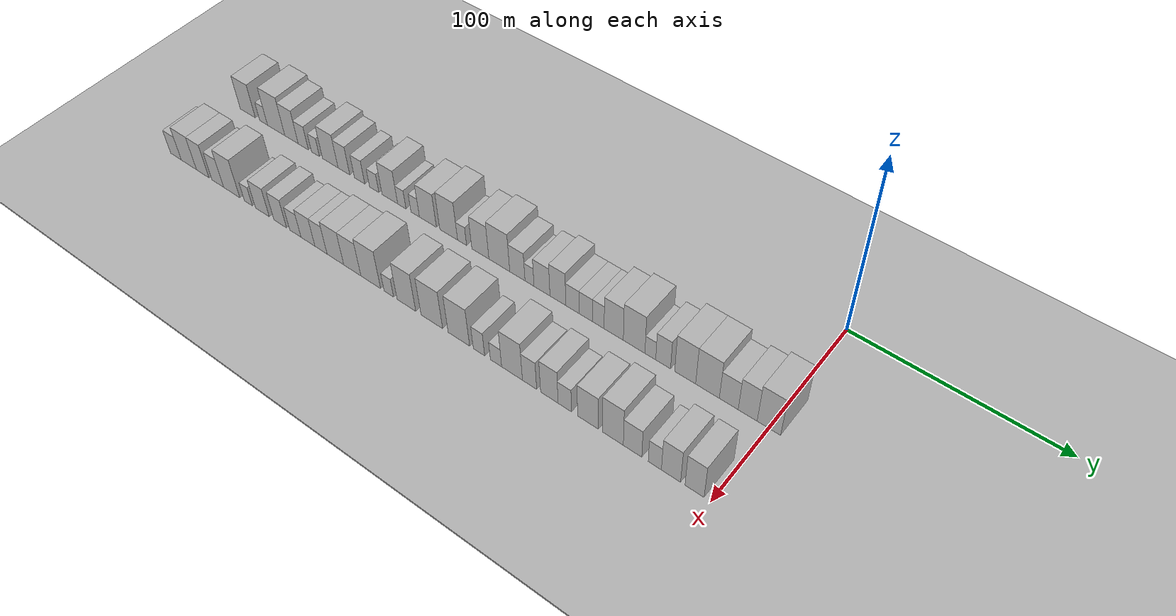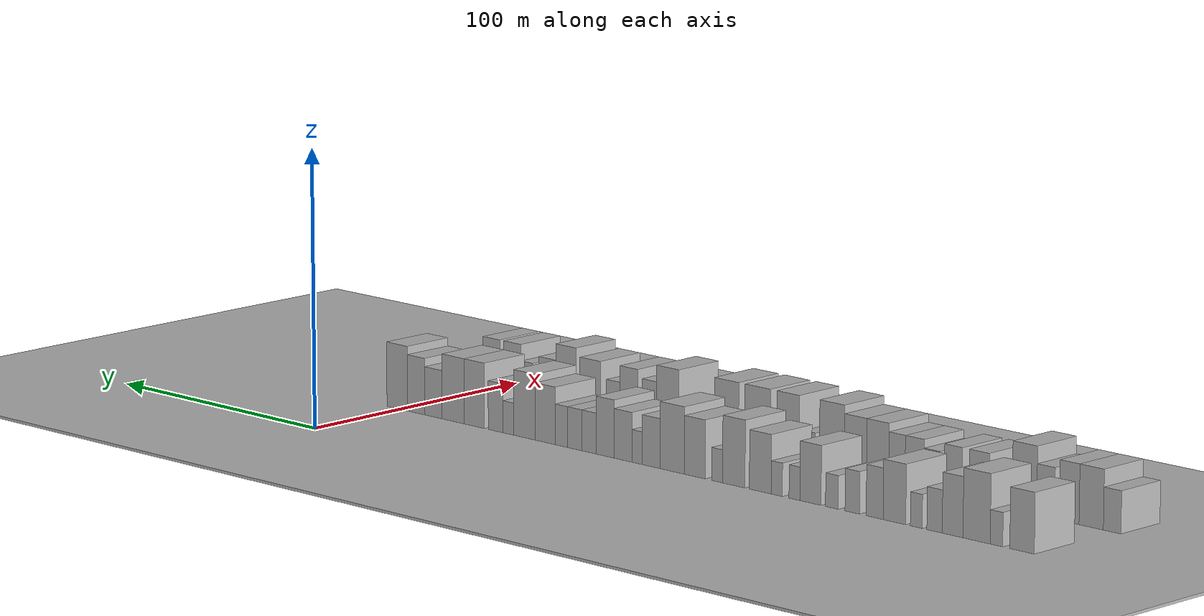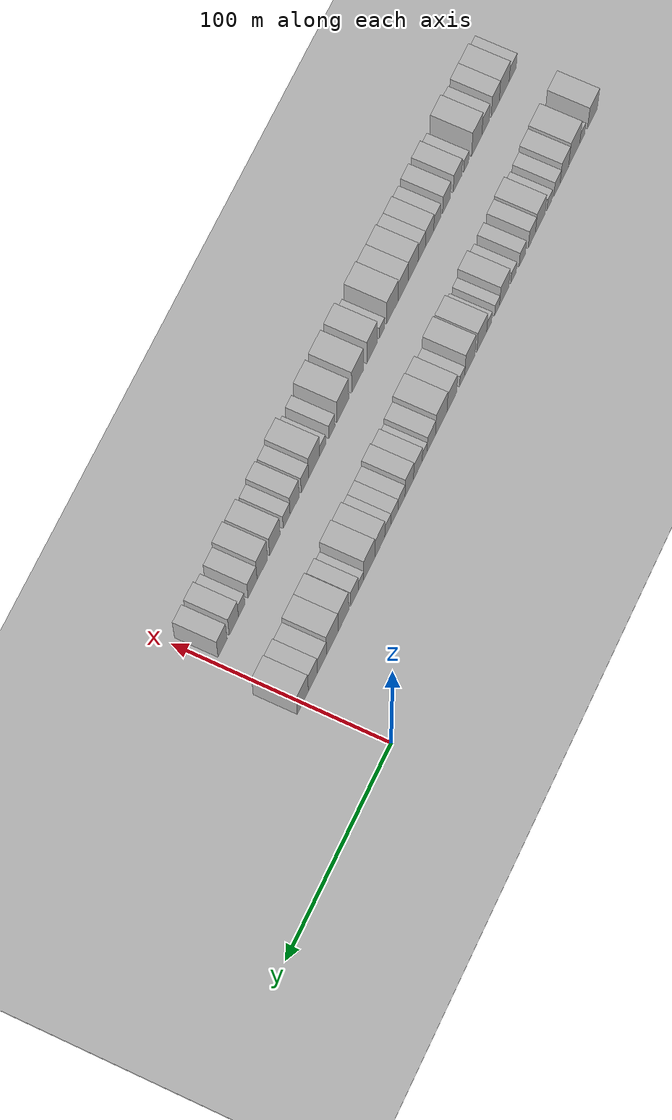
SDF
<sdf version="1.6">
 <world name="default">
  <include><name>ground_plane_1</name><uri>model://HANNAS_ground_plane</uri></include>
  <include>
   <name>ground_plane_2</name>
   <uri>model://HANNAS_ground_plane</uri>
   <pose>100 0 0  0 0 0</pose>
  </include>
  <model name="building_1">
   <static>1</static>
   <pose>50.0000 -291.7984 0 0.000000 0.000000 0.000000</pose>
   <link name="link">
    <pose>0 0 10.50 0 0 0</pose>
    <collision name="collision"><geometry><box><size>20.0000 10.4033 21.0000</size></box></geometry></collision>
    <visual name="visual">
     <cast_shadows>0</cast_shadows>
     <geometry><box><size>20.0000 10.4033 21.0000</size></box></geometry>
     <material>
      <script>
       <uri>model://HANNAS_wall/materials/scripts</uri>
       <uri>model://HANNAS_wall/materials/textures</uri>
       <name>vrc/HANNAS_wall</name>
      </script>
     </material>
    </visual>
   </link>
  </model>
  <model name="building_2">
   <static>1</static>
   <pose>50.0000 -280.9232 0 0.000000 0.000000 0.000000</pose>
   <link name="link">
    <pose>0 0 6.00 0 0 0</pose>
    <collision name="collision"><geometry><box><size>20.0000 5.3470 12.0000</size></box></geometry></collision>
    <visual name="visual">
     <cast_shadows>0</cast_shadows>
     <geometry><box><size>20.0000 5.3470 12.0000</size></box></geometry>
     <material>
      <script>
       <uri>model://HANNAS_wall/materials/scripts</uri>
       <uri>model://HANNAS_wall/materials/textures</uri>
       <name>vrc/HANNAS_wall</name>
      </script>
     </material>
    </visual>
   </link>
  </model>
  <model name="building_3">
   <static>1</static>
   <pose>50.0000 -272.3910 0 0.000000 0.000000 0.000000</pose>
   <link name="link">
    <pose>0 0 12.00 0 0 0</pose>
    <collision name="collision"><geometry><box><size>20.0000 11.7176 24.0000</size></box></geometry></collision>
    <visual name="visual">
     <cast_shadows>0</cast_shadows>
     <geometry><box><size>20.0000 11.7176 24.0000</size></box></geometry>
     <material>
      <script>
       <uri>model://HANNAS_wall/materials/scripts</uri>
       <uri>model://HANNAS_wall/materials/textures</uri>
       <name>vrc/HANNAS_wall</name>
      </script>
     </material>
    </visual>
   </link>
  </model>
  <model name="building_4">
   <static>1</static>
   <pose>50.0000 -262.0434 0 0.000000 0.000000 0.000000</pose>
   <link name="link">
    <pose>0 0 10.50 0 0 0</pose>
    <collision name="collision"><geometry><box><size>20.0000 8.9775 21.0000</size></box></geometry></collision>
    <visual name="visual">
     <cast_shadows>0</cast_shadows>
     <geometry><box><size>20.0000 8.9775 21.0000</size></box></geometry>
     <material>
      <script>
       <uri>model://HANNAS_wall/materials/scripts</uri>
       <uri>model://HANNAS_wall/materials/textures</uri>
       <name>vrc/HANNAS_wall</name>
      </script>
     </material>
    </visual>
   </link>
  </model>
  <model name="building_5">
   <static>1</static>
   <pose>50.0000 -254.2005 0 0.000000 0.000000 0.000000</pose>
   <link name="link">
    <pose>0 0 7.50 0 0 0</pose>
    <collision name="collision"><geometry><box><size>20.0000 6.7083 15.0000</size></box></geometry></collision>
    <visual name="visual">
     <cast_shadows>0</cast_shadows>
     <geometry><box><size>20.0000 6.7083 15.0000</size></box></geometry>
     <material>
      <script>
       <uri>model://HANNAS_wall/materials/scripts</uri>
       <uri>model://HANNAS_wall/materials/textures</uri>
       <name>vrc/HANNAS_wall</name>
      </script>
     </material>
    </visual>
   </link>
  </model>
  <model name="building_6">
   <static>1</static>
   <pose>50.0000 -246.2385 0 0.000000 0.000000 0.000000</pose>
   <link name="link">
    <pose>0 0 6.00 0 0 0</pose>
    <collision name="collision"><geometry><box><size>20.0000 5.2157 12.0000</size></box></geometry></collision>
    <visual name="visual">
     <cast_shadows>0</cast_shadows>
     <geometry><box><size>20.0000 5.2157 12.0000</size></box></geometry>
     <material>
      <script>
       <uri>model://HANNAS_wall/materials/scripts</uri>
       <uri>model://HANNAS_wall/materials/textures</uri>
       <name>vrc/HANNAS_wall</name>
      </script>
     </material>
    </visual>
   </link>
  </model>
  <model name="building_7">
   <static>1</static>
   <pose>50.0000 -236.6326 0 0.000000 0.000000 0.000000</pose>
   <link name="link">
    <pose>0 0 10.50 0 0 0</pose>
    <collision name="collision"><geometry><box><size>20.0000 9.9960 21.0000</size></box></geometry></collision>
    <visual name="visual">
     <cast_shadows>0</cast_shadows>
     <geometry><box><size>20.0000 9.9960 21.0000</size></box></geometry>
     <material>
      <script>
       <uri>model://HANNAS_wall/materials/scripts</uri>
       <uri>model://HANNAS_wall/materials/textures</uri>
       <name>vrc/HANNAS_wall</name>
      </script>
     </material>
    </visual>
   </link>
  </model>
  <model name="building_8">
   <static>1</static>
   <pose>50.0000 -227.9022 0 0.000000 0.000000 0.000000</pose>
   <link name="link">
    <pose>0 0 9.00 0 0 0</pose>
    <collision name="collision"><geometry><box><size>20.0000 7.4647 18.0000</size></box></geometry></collision>
    <visual name="visual">
     <cast_shadows>0</cast_shadows>
     <geometry><box><size>20.0000 7.4647 18.0000</size></box></geometry>
     <material>
      <script>
       <uri>model://HANNAS_wall/materials/scripts</uri>
       <uri>model://HANNAS_wall/materials/textures</uri>
       <name>vrc/HANNAS_wall</name>
      </script>
     </material>
    </visual>
   </link>
  </model>
  <model name="building_9">
   <static>1</static>
   <pose>50.0000 -217.9358 0 0.000000 0.000000 0.000000</pose>
   <link name="link">
    <pose>0 0 7.50 0 0 0</pose>
    <collision name="collision"><geometry><box><size>20.0000 6.4683 15.0000</size></box></geometry></collision>
    <visual name="visual">
     <cast_shadows>0</cast_shadows>
     <geometry><box><size>20.0000 6.4683 15.0000</size></box></geometry>
     <material>
      <script>
       <uri>model://HANNAS_wall/materials/scripts</uri>
       <uri>model://HANNAS_wall/materials/textures</uri>
       <name>vrc/HANNAS_wall</name>
      </script>
     </material>
    </visual>
   </link>
  </model>
  <model name="building_10">
   <static>1</static>
   <pose>50.0000 -208.8359 0 0.000000 0.000000 0.000000</pose>
   <link name="link">
    <pose>0 0 6.00 0 0 0</pose>
    <collision name="collision"><geometry><box><size>20.0000 5.7314 12.0000</size></box></geometry></collision>
    <visual name="visual">
     <cast_shadows>0</cast_shadows>
     <geometry><box><size>20.0000 5.7314 12.0000</size></box></geometry>
     <material>
      <script>
       <uri>model://HANNAS_wall/materials/scripts</uri>
       <uri>model://HANNAS_wall/materials/textures</uri>
       <name>vrc/HANNAS_wall</name>
      </script>
     </material>
    </visual>
   </link>
  </model>
  <model name="building_11">
   <static>1</static>
   <pose>50.0000 -199.2077 0 0.000000 0.000000 0.000000</pose>
   <link name="link">
    <pose>0 0 10.50 0 0 0</pose>
    <collision name="collision"><geometry><box><size>20.0000 9.5249 21.0000</size></box></geometry></collision>
    <visual name="visual">
     <cast_shadows>0</cast_shadows>
     <geometry><box><size>20.0000 9.5249 21.0000</size></box></geometry>
     <material>
      <script>
       <uri>model://HANNAS_wall/materials/scripts</uri>
       <uri>model://HANNAS_wall/materials/textures</uri>
       <name>vrc/HANNAS_wall</name>
      </script>
     </material>
    </visual>
   </link>
  </model>
  <model name="building_12">
   <static>1</static>
   <pose>50.0000 -191.9415 0 0.000000 0.000000 0.000000</pose>
   <link name="link">
    <pose>0 0 6.00 0 0 0</pose>
    <collision name="collision"><geometry><box><size>20.0000 5.0075 12.0000</size></box></geometry></collision>
    <visual name="visual">
     <cast_shadows>0</cast_shadows>
     <geometry><box><size>20.0000 5.0075 12.0000</size></box></geometry>
     <material>
      <script>
       <uri>model://HANNAS_wall/materials/scripts</uri>
       <uri>model://HANNAS_wall/materials/textures</uri>
       <name>vrc/HANNAS_wall</name>
      </script>
     </material>
    </visual>
   </link>
  </model>
  <model name="building_13">
   <static>1</static>
   <pose>50.0000 -183.9053 0 0.000000 0.000000 0.000000</pose>
   <link name="link">
    <pose>0 0 6.00 0 0 0</pose>
    <collision name="collision"><geometry><box><size>20.0000 5.0648 12.0000</size></box></geometry></collision>
    <visual name="visual">
     <cast_shadows>0</cast_shadows>
     <geometry><box><size>20.0000 5.0648 12.0000</size></box></geometry>
     <material>
      <script>
       <uri>model://HANNAS_wall/materials/scripts</uri>
       <uri>model://HANNAS_wall/materials/textures</uri>
       <name>vrc/HANNAS_wall</name>
      </script>
     </material>
    </visual>
   </link>
  </model>
  <model name="building_14">
   <static>1</static>
   <pose>50.0000 -176.3470 0 0.000000 0.000000 0.000000</pose>
   <link name="link">
    <pose>0 0 10.50 0 0 0</pose>
    <collision name="collision"><geometry><box><size>20.0000 10.0518 21.0000</size></box></geometry></collision>
    <visual name="visual">
     <cast_shadows>0</cast_shadows>
     <geometry><box><size>20.0000 10.0518 21.0000</size></box></geometry>
     <material>
      <script>
       <uri>model://HANNAS_wall/materials/scripts</uri>
       <uri>model://HANNAS_wall/materials/textures</uri>
       <name>vrc/HANNAS_wall</name>
      </script>
     </material>
    </visual>
   </link>
  </model>
  <model name="building_15">
   <static>1</static>
   <pose>50.0000 -164.1499 0 0.000000 0.000000 0.000000</pose>
   <link name="link">
    <pose>0 0 12.00 0 0 0</pose>
    <collision name="collision"><geometry><box><size>20.0000 10.3426 24.0000</size></box></geometry></collision>
    <visual name="visual">
     <cast_shadows>0</cast_shadows>
     <geometry><box><size>20.0000 10.3426 24.0000</size></box></geometry>
     <material>
      <script>
       <uri>model://HANNAS_wall/materials/scripts</uri>
       <uri>model://HANNAS_wall/materials/textures</uri>
       <name>vrc/HANNAS_wall</name>
      </script>
     </material>
    </visual>
   </link>
  </model>
  <model name="building_16">
   <static>1</static>
   <pose>50.0000 -156.3811 0 0.000000 0.000000 0.000000</pose>
   <link name="link">
    <pose>0 0 6.00 0 0 0</pose>
    <collision name="collision"><geometry><box><size>20.0000 5.1948 12.0000</size></box></geometry></collision>
    <visual name="visual">
     <cast_shadows>0</cast_shadows>
     <geometry><box><size>20.0000 5.1948 12.0000</size></box></geometry>
     <material>
      <script>
       <uri>model://HANNAS_wall/materials/scripts</uri>
       <uri>model://HANNAS_wall/materials/textures</uri>
       <name>vrc/HANNAS_wall</name>
      </script>
     </material>
    </visual>
   </link>
  </model>
  <model name="building_17">
   <static>1</static>
   <pose>50.0000 -145.9532 0 0.000000 0.000000 0.000000</pose>
   <link name="link">
    <pose>0 0 10.50 0 0 0</pose>
    <collision name="collision"><geometry><box><size>20.0000 9.6611 21.0000</size></box></geometry></collision>
    <visual name="visual">
     <cast_shadows>0</cast_shadows>
     <geometry><box><size>20.0000 9.6611 21.0000</size></box></geometry>
     <material>
      <script>
       <uri>model://HANNAS_wall/materials/scripts</uri>
       <uri>model://HANNAS_wall/materials/textures</uri>
       <name>vrc/HANNAS_wall</name>
      </script>
     </material>
    </visual>
   </link>
  </model>
  <model name="building_18">
   <static>1</static>
   <pose>50.0000 -135.3062 0 0.000000 0.000000 0.000000</pose>
   <link name="link">
    <pose>0 0 12.00 0 0 0</pose>
    <collision name="collision"><geometry><box><size>20.0000 11.6329 24.0000</size></box></geometry></collision>
    <visual name="visual">
     <cast_shadows>0</cast_shadows>
     <geometry><box><size>20.0000 11.6329 24.0000</size></box></geometry>
     <material>
      <script>
       <uri>model://HANNAS_wall/materials/scripts</uri>
       <uri>model://HANNAS_wall/materials/textures</uri>
       <name>vrc/HANNAS_wall</name>
      </script>
     </material>
    </visual>
   </link>
  </model>
  <model name="building_19">
   <static>1</static>
   <pose>50.0000 -125.2963 0 0.000000 0.000000 0.000000</pose>
   <link name="link">
    <pose>0 0 9.00 0 0 0</pose>
    <collision name="collision"><geometry><box><size>20.0000 8.3871 18.0000</size></box></geometry></collision>
    <visual name="visual">
     <cast_shadows>0</cast_shadows>
     <geometry><box><size>20.0000 8.3871 18.0000</size></box></geometry>
     <material>
      <script>
       <uri>model://HANNAS_wall/materials/scripts</uri>
       <uri>model://HANNAS_wall/materials/textures</uri>
       <name>vrc/HANNAS_wall</name>
      </script>
     </material>
    </visual>
   </link>
  </model>
  <model name="building_20">
   <static>1</static>
   <pose>50.0000 -118.6462 0 0.000000 0.000000 0.000000</pose>
   <link name="link">
    <pose>0 0 6.00 0 0 0</pose>
    <collision name="collision"><geometry><box><size>20.0000 4.9131 12.0000</size></box></geometry></collision>
    <visual name="visual">
     <cast_shadows>0</cast_shadows>
     <geometry><box><size>20.0000 4.9131 12.0000</size></box></geometry>
     <material>
      <script>
       <uri>model://HANNAS_wall/materials/scripts</uri>
       <uri>model://HANNAS_wall/materials/textures</uri>
       <name>vrc/HANNAS_wall</name>
      </script>
     </material>
    </visual>
   </link>
  </model>
  <model name="building_21">
   <static>1</static>
   <pose>50.0000 -111.9000 0 0.000000 0.000000 0.000000</pose>
   <link name="link">
    <pose>0 0 9.00 0 0 0</pose>
    <collision name="collision"><geometry><box><size>20.0000 8.5792 18.0000</size></box></geometry></collision>
    <visual name="visual">
     <cast_shadows>0</cast_shadows>
     <geometry><box><size>20.0000 8.5792 18.0000</size></box></geometry>
     <material>
      <script>
       <uri>model://HANNAS_wall/materials/scripts</uri>
       <uri>model://HANNAS_wall/materials/textures</uri>
       <name>vrc/HANNAS_wall</name>
      </script>
     </material>
    </visual>
   </link>
  </model>
  <model name="building_22">
   <static>1</static>
   <pose>50.0000 -103.3777 0 0.000000 0.000000 0.000000</pose>
   <link name="link">
    <pose>0 0 10.50 0 0 0</pose>
    <collision name="collision"><geometry><box><size>20.0000 8.4652 21.0000</size></box></geometry></collision>
    <visual name="visual">
     <cast_shadows>0</cast_shadows>
     <geometry><box><size>20.0000 8.4652 21.0000</size></box></geometry>
     <material>
      <script>
       <uri>model://HANNAS_wall/materials/scripts</uri>
       <uri>model://HANNAS_wall/materials/textures</uri>
       <name>vrc/HANNAS_wall</name>
      </script>
     </material>
    </visual>
   </link>
  </model>
  <model name="building_23">
   <static>1</static>
   <pose>50.0000 -95.6547 0 0.000000 0.000000 0.000000</pose>
   <link name="link">
    <pose>0 0 7.50 0 0 0</pose>
    <collision name="collision"><geometry><box><size>20.0000 6.9809 15.0000</size></box></geometry></collision>
    <visual name="visual">
     <cast_shadows>0</cast_shadows>
     <geometry><box><size>20.0000 6.9809 15.0000</size></box></geometry>
     <material>
      <script>
       <uri>model://HANNAS_wall/materials/scripts</uri>
       <uri>model://HANNAS_wall/materials/textures</uri>
       <name>vrc/HANNAS_wall</name>
      </script>
     </material>
    </visual>
   </link>
  </model>
  <model name="building_24">
   <static>1</static>
   <pose>50.0000 -88.6900 0 0.000000 0.000000 0.000000</pose>
   <link name="link">
    <pose>0 0 7.50 0 0 0</pose>
    <collision name="collision"><geometry><box><size>20.0000 6.9484 15.0000</size></box></geometry></collision>
    <visual name="visual">
     <cast_shadows>0</cast_shadows>
     <geometry><box><size>20.0000 6.9484 15.0000</size></box></geometry>
     <material>
      <script>
       <uri>model://HANNAS_wall/materials/scripts</uri>
       <uri>model://HANNAS_wall/materials/textures</uri>
       <name>vrc/HANNAS_wall</name>
      </script>
     </material>
    </visual>
   </link>
  </model>
  <model name="building_25">
   <static>1</static>
   <pose>50.0000 -82.2115 0 0.000000 0.000000 0.000000</pose>
   <link name="link">
    <pose>0 0 7.50 0 0 0</pose>
    <collision name="collision"><geometry><box><size>20.0000 6.0088 15.0000</size></box></geometry></collision>
    <visual name="visual">
     <cast_shadows>0</cast_shadows>
     <geometry><box><size>20.0000 6.0088 15.0000</size></box></geometry>
     <material>
      <script>
       <uri>model://HANNAS_wall/materials/scripts</uri>
       <uri>model://HANNAS_wall/materials/textures</uri>
       <name>vrc/HANNAS_wall</name>
      </script>
     </material>
    </visual>
   </link>
  </model>
  <model name="building_26">
   <static>1</static>
   <pose>50.0000 -74.3394 0 0.000000 0.000000 0.000000</pose>
   <link name="link">
    <pose>0 0 10.50 0 0 0</pose>
    <collision name="collision"><geometry><box><size>20.0000 9.7353 21.0000</size></box></geometry></collision>
    <visual name="visual">
     <cast_shadows>0</cast_shadows>
     <geometry><box><size>20.0000 9.7353 21.0000</size></box></geometry>
     <material>
      <script>
       <uri>model://HANNAS_wall/materials/scripts</uri>
       <uri>model://HANNAS_wall/materials/textures</uri>
       <name>vrc/HANNAS_wall</name>
      </script>
     </material>
    </visual>
   </link>
  </model>
  <model name="building_27">
   <static>1</static>
   <pose>50.0000 -64.0591 0 0.000000 0.000000 0.000000</pose>
   <link name="link">
    <pose>0 0 12.00 0 0 0</pose>
    <collision name="collision"><geometry><box><size>20.0000 10.8253 24.0000</size></box></geometry></collision>
    <visual name="visual">
     <cast_shadows>0</cast_shadows>
     <geometry><box><size>20.0000 10.8253 24.0000</size></box></geometry>
     <material>
      <script>
       <uri>model://HANNAS_wall/materials/scripts</uri>
       <uri>model://HANNAS_wall/materials/textures</uri>
       <name>vrc/HANNAS_wall</name>
      </script>
     </material>
    </visual>
   </link>
  </model>
  <model name="building_28">
   <static>1</static>
   <pose>50.0000 -55.9848 0 0.000000 0.000000 0.000000</pose>
   <link name="link">
    <pose>0 0 6.00 0 0 0</pose>
    <collision name="collision"><geometry><box><size>20.0000 5.3234 12.0000</size></box></geometry></collision>
    <visual name="visual">
     <cast_shadows>0</cast_shadows>
     <geometry><box><size>20.0000 5.3234 12.0000</size></box></geometry>
     <material>
      <script>
       <uri>model://HANNAS_wall/materials/scripts</uri>
       <uri>model://HANNAS_wall/materials/textures</uri>
       <name>vrc/HANNAS_wall</name>
      </script>
     </material>
    </visual>
   </link>
  </model>
  <model name="building_29">
   <static>1</static>
   <pose>50.0000 -49.6872 0 0.000000 0.000000 0.000000</pose>
   <link name="link">
    <pose>0 0 9.00 0 0 0</pose>
    <collision name="collision"><geometry><box><size>20.0000 7.2717 18.0000</size></box></geometry></collision>
    <visual name="visual">
     <cast_shadows>0</cast_shadows>
     <geometry><box><size>20.0000 7.2717 18.0000</size></box></geometry>
     <material>
      <script>
       <uri>model://HANNAS_wall/materials/scripts</uri>
       <uri>model://HANNAS_wall/materials/textures</uri>
       <name>vrc/HANNAS_wall</name>
      </script>
     </material>
    </visual>
   </link>
  </model>
  <model name="building_30">
   <static>1</static>
   <pose>50.0000 -39.0021 0 0.000000 0.000000 0.000000</pose>
   <link name="link">
    <pose>0 0 12.00 0 0 0</pose>
    <collision name="collision"><geometry><box><size>20.0000 10.0985 24.0000</size></box></geometry></collision>
    <visual name="visual">
     <cast_shadows>0</cast_shadows>
     <geometry><box><size>20.0000 10.0985 24.0000</size></box></geometry>
     <material>
      <script>
       <uri>model://HANNAS_wall/materials/scripts</uri>
       <uri>model://HANNAS_wall/materials/textures</uri>
       <name>vrc/HANNAS_wall</name>
      </script>
     </material>
    </visual>
   </link>
  </model>
  <model name="building_31">
   <static>1</static>
   <pose>50.0000 -28.3409 0 0.000000 0.000000 0.000000</pose>
   <link name="link">
    <pose>0 0 12.00 0 0 0</pose>
    <collision name="collision"><geometry><box><size>20.0000 11.2239 24.0000</size></box></geometry></collision>
    <visual name="visual">
     <cast_shadows>0</cast_shadows>
     <geometry><box><size>20.0000 11.2239 24.0000</size></box></geometry>
     <material>
      <script>
       <uri>model://HANNAS_wall/materials/scripts</uri>
       <uri>model://HANNAS_wall/materials/textures</uri>
       <name>vrc/HANNAS_wall</name>
      </script>
     </material>
    </visual>
   </link>
  </model>
  <model name="building_32">
   <static>1</static>
   <pose>50.0000 -18.3390 0 0.000000 0.000000 0.000000</pose>
   <link name="link">
    <pose>0 0 9.00 0 0 0</pose>
    <collision name="collision"><geometry><box><size>20.0000 8.7800 18.0000</size></box></geometry></collision>
    <visual name="visual">
     <cast_shadows>0</cast_shadows>
     <geometry><box><size>20.0000 8.7800 18.0000</size></box></geometry>
     <material>
      <script>
       <uri>model://HANNAS_wall/materials/scripts</uri>
       <uri>model://HANNAS_wall/materials/textures</uri>
       <name>vrc/HANNAS_wall</name>
      </script>
     </material>
    </visual>
   </link>
  </model>
  <model name="building_33">
   <static>1</static>
   <pose>50.0000 -9.5903 0 0.000000 0.000000 0.000000</pose>
   <link name="link">
    <pose>0 0 10.50 0 0 0</pose>
    <collision name="collision"><geometry><box><size>20.0000 8.7173 21.0000</size></box></geometry></collision>
    <visual name="visual">
     <cast_shadows>0</cast_shadows>
     <geometry><box><size>20.0000 8.7173 21.0000</size></box></geometry>
     <material>
      <script>
       <uri>model://HANNAS_wall/materials/scripts</uri>
       <uri>model://HANNAS_wall/materials/textures</uri>
       <name>vrc/HANNAS_wall</name>
      </script>
     </material>
    </visual>
   </link>
  </model>
  <model name="building_34">
   <static>1</static>
   <pose>50.0000 0.0776 0 0.000000 0.000000 0.000000</pose>
   <link name="link">
    <pose>0 0 12.00 0 0 0</pose>
    <collision name="collision"><geometry><box><size>20.0000 10.6185 24.0000</size></box></geometry></collision>
    <visual name="visual">
     <cast_shadows>0</cast_shadows>
     <geometry><box><size>20.0000 10.6185 24.0000</size></box></geometry>
     <material>
      <script>
       <uri>model://HANNAS_wall/materials/scripts</uri>
       <uri>model://HANNAS_wall/materials/textures</uri>
       <name>vrc/HANNAS_wall</name>
      </script>
     </material>
    </visual>
   </link>
  </model>
  <model name="building_69">
   <static>1</static>
   <pose>90.0000 -296.2783 0 0.000000 0.000000 0.000000</pose>
   <link name="link">
    <pose>0 0 7.50 0 0 0</pose>
    <collision name="collision"><geometry><box><size>20.0000 7.4434 15.0000</size></box></geometry></collision>
    <visual name="visual">
     <cast_shadows>0</cast_shadows>
     <geometry><box><size>20.0000 7.4434 15.0000</size></box></geometry>
     <material>
      <script>
       <uri>model://HANNAS_wall/materials/scripts</uri>
       <uri>model://HANNAS_wall/materials/textures</uri>
       <name>vrc/HANNAS_wall</name>
      </script>
     </material>
    </visual>
   </link>
  </model>
  <model name="building_70">
   <static>1</static>
   <pose>90.0000 -287.3643 0 0.000000 0.000000 0.000000</pose>
   <link name="link">
    <pose>0 0 10.50 0 0 0</pose>
    <collision name="collision"><geometry><box><size>20.0000 10.3846 21.0000</size></box></geometry></collision>
    <visual name="visual">
     <cast_shadows>0</cast_shadows>
     <geometry><box><size>20.0000 10.3846 21.0000</size></box></geometry>
     <material>
      <script>
       <uri>model://HANNAS_wall/materials/scripts</uri>
       <uri>model://HANNAS_wall/materials/textures</uri>
       <name>vrc/HANNAS_wall</name>
      </script>
     </material>
    </visual>
   </link>
  </model>
  <model name="building_71">
   <static>1</static>
   <pose>90.0000 -277.9223 0 0.000000 0.000000 0.000000</pose>
   <link name="link">
    <pose>0 0 10.50 0 0 0</pose>
    <collision name="collision"><geometry><box><size>20.0000 8.4995 21.0000</size></box></geometry></collision>
    <visual name="visual">
     <cast_shadows>0</cast_shadows>
     <geometry><box><size>20.0000 8.4995 21.0000</size></box></geometry>
     <material>
      <script>
       <uri>model://HANNAS_wall/materials/scripts</uri>
       <uri>model://HANNAS_wall/materials/textures</uri>
       <name>vrc/HANNAS_wall</name>
      </script>
     </material>
    </visual>
   </link>
  </model>
  <model name="building_72">
   <static>1</static>
   <pose>90.0000 -267.7999 0 0.000000 0.000000 0.000000</pose>
   <link name="link">
    <pose>0 0 9.00 0 0 0</pose>
    <collision name="collision"><geometry><box><size>20.0000 7.7453 18.0000</size></box></geometry></collision>
    <visual name="visual">
     <cast_shadows>0</cast_shadows>
     <geometry><box><size>20.0000 7.7453 18.0000</size></box></geometry>
     <material>
      <script>
       <uri>model://HANNAS_wall/materials/scripts</uri>
       <uri>model://HANNAS_wall/materials/textures</uri>
       <name>vrc/HANNAS_wall</name>
      </script>
     </material>
    </visual>
   </link>
  </model>
  <model name="building_73">
   <static>1</static>
   <pose>90.0000 -258.5792 0 0.000000 0.000000 0.000000</pose>
   <link name="link">
    <pose>0 0 12.00 0 0 0</pose>
    <collision name="collision"><geometry><box><size>20.0000 10.6961 24.0000</size></box></geometry></collision>
    <visual name="visual">
     <cast_shadows>0</cast_shadows>
     <geometry><box><size>20.0000 10.6961 24.0000</size></box></geometry>
     <material>
      <script>
       <uri>model://HANNAS_wall/materials/scripts</uri>
       <uri>model://HANNAS_wall/materials/textures</uri>
       <name>vrc/HANNAS_wall</name>
      </script>
     </material>
    </visual>
   </link>
  </model>
  <model name="building_74">
   <static>1</static>
   <pose>90.0000 -247.6465 0 0.000000 0.000000 0.000000</pose>
   <link name="link">
    <pose>0 0 6.00 0 0 0</pose>
    <collision name="collision"><geometry><box><size>20.0000 5.1694 12.0000</size></box></geometry></collision>
    <visual name="visual">
     <cast_shadows>0</cast_shadows>
     <geometry><box><size>20.0000 5.1694 12.0000</size></box></geometry>
     <material>
      <script>
       <uri>model://HANNAS_wall/materials/scripts</uri>
       <uri>model://HANNAS_wall/materials/textures</uri>
       <name>vrc/HANNAS_wall</name>
      </script>
     </material>
    </visual>
   </link>
  </model>
  <model name="building_75">
   <static>1</static>
   <pose>90.0000 -238.6588 0 0.000000 0.000000 0.000000</pose>
   <link name="link">
    <pose>0 0 9.00 0 0 0</pose>
    <collision name="collision"><geometry><box><size>20.0000 8.8059 18.0000</size></box></geometry></collision>
    <visual name="visual">
     <cast_shadows>0</cast_shadows>
     <geometry><box><size>20.0000 8.8059 18.0000</size></box></geometry>
     <material>
      <script>
       <uri>model://HANNAS_wall/materials/scripts</uri>
       <uri>model://HANNAS_wall/materials/textures</uri>
       <name>vrc/HANNAS_wall</name>
      </script>
     </material>
    </visual>
   </link>
  </model>
  <model name="building_76">
   <static>1</static>
   <pose>90.0000 -227.2839 0 0.000000 0.000000 0.000000</pose>
   <link name="link">
    <pose>0 0 9.00 0 0 0</pose>
    <collision name="collision"><geometry><box><size>20.0000 7.9439 18.0000</size></box></geometry></collision>
    <visual name="visual">
     <cast_shadows>0</cast_shadows>
     <geometry><box><size>20.0000 7.9439 18.0000</size></box></geometry>
     <material>
      <script>
       <uri>model://HANNAS_wall/materials/scripts</uri>
       <uri>model://HANNAS_wall/materials/textures</uri>
       <name>vrc/HANNAS_wall</name>
      </script>
     </material>
    </visual>
   </link>
  </model>
  <model name="building_77">
   <static>1</static>
   <pose>90.0000 -217.8104 0 0.000000 0.000000 0.000000</pose>
   <link name="link">
    <pose>0 0 7.50 0 0 0</pose>
    <collision name="collision"><geometry><box><size>20.0000 7.0031 15.0000</size></box></geometry></collision>
    <visual name="visual">
     <cast_shadows>0</cast_shadows>
     <geometry><box><size>20.0000 7.0031 15.0000</size></box></geometry>
     <material>
      <script>
       <uri>model://HANNAS_wall/materials/scripts</uri>
       <uri>model://HANNAS_wall/materials/textures</uri>
       <name>vrc/HANNAS_wall</name>
      </script>
     </material>
    </visual>
   </link>
  </model>
  <model name="building_78">
   <static>1</static>
   <pose>90.0000 -210.0151 0 0.000000 0.000000 0.000000</pose>
   <link name="link">
    <pose>0 0 9.00 0 0 0</pose>
    <collision name="collision"><geometry><box><size>20.0000 8.5876 18.0000</size></box></geometry></collision>
    <visual name="visual">
     <cast_shadows>0</cast_shadows>
     <geometry><box><size>20.0000 8.5876 18.0000</size></box></geometry>
     <material>
      <script>
       <uri>model://HANNAS_wall/materials/scripts</uri>
       <uri>model://HANNAS_wall/materials/textures</uri>
       <name>vrc/HANNAS_wall</name>
      </script>
     </material>
    </visual>
   </link>
  </model>
  <model name="building_79">
   <static>1</static>
   <pose>90.0000 -202.0236 0 0.000000 0.000000 0.000000</pose>
   <link name="link">
    <pose>0 0 9.00 0 0 0</pose>
    <collision name="collision"><geometry><box><size>20.0000 7.3955 18.0000</size></box></geometry></collision>
    <visual name="visual">
     <cast_shadows>0</cast_shadows>
     <geometry><box><size>20.0000 7.3955 18.0000</size></box></geometry>
     <material>
      <script>
       <uri>model://HANNAS_wall/materials/scripts</uri>
       <uri>model://HANNAS_wall/materials/textures</uri>
       <name>vrc/HANNAS_wall</name>
      </script>
     </material>
    </visual>
   </link>
  </model>
  <model name="building_80">
   <static>1</static>
   <pose>90.0000 -193.3308 0 0.000000 0.000000 0.000000</pose>
   <link name="link">
    <pose>0 0 10.50 0 0 0</pose>
    <collision name="collision"><geometry><box><size>20.0000 9.9900 21.0000</size></box></geometry></collision>
    <visual name="visual">
     <cast_shadows>0</cast_shadows>
     <geometry><box><size>20.0000 9.9900 21.0000</size></box></geometry>
     <material>
      <script>
       <uri>model://HANNAS_wall/materials/scripts</uri>
       <uri>model://HANNAS_wall/materials/textures</uri>
       <name>vrc/HANNAS_wall</name>
      </script>
     </material>
    </visual>
   </link>
  </model>
  <model name="building_81">
   <static>1</static>
   <pose>90.0000 -183.2600 0 0.000000 0.000000 0.000000</pose>
   <link name="link">
    <pose>0 0 10.50 0 0 0</pose>
    <collision name="collision"><geometry><box><size>20.0000 10.1518 21.0000</size></box></geometry></collision>
    <visual name="visual">
     <cast_shadows>0</cast_shadows>
     <geometry><box><size>20.0000 10.1518 21.0000</size></box></geometry>
     <material>
      <script>
       <uri>model://HANNAS_wall/materials/scripts</uri>
       <uri>model://HANNAS_wall/materials/textures</uri>
       <name>vrc/HANNAS_wall</name>
      </script>
     </material>
    </visual>
   </link>
  </model>
  <model name="building_82">
   <static>1</static>
   <pose>90.0000 -172.4352 0 0.000000 0.000000 0.000000</pose>
   <link name="link">
    <pose>0 0 12.00 0 0 0</pose>
    <collision name="collision"><geometry><box><size>20.0000 11.4978 24.0000</size></box></geometry></collision>
    <visual name="visual">
     <cast_shadows>0</cast_shadows>
     <geometry><box><size>20.0000 11.4978 24.0000</size></box></geometry>
     <material>
      <script>
       <uri>model://HANNAS_wall/materials/scripts</uri>
       <uri>model://HANNAS_wall/materials/textures</uri>
       <name>vrc/HANNAS_wall</name>
      </script>
     </material>
    </visual>
   </link>
  </model>
  <model name="building_83">
   <static>1</static>
   <pose>90.0000 -161.9514 0 0.000000 0.000000 0.000000</pose>
   <link name="link">
    <pose>0 0 6.00 0 0 0</pose>
    <collision name="collision"><geometry><box><size>20.0000 5.4698 12.0000</size></box></geometry></collision>
    <visual name="visual">
     <cast_shadows>0</cast_shadows>
     <geometry><box><size>20.0000 5.4698 12.0000</size></box></geometry>
     <material>
      <script>
       <uri>model://HANNAS_wall/materials/scripts</uri>
       <uri>model://HANNAS_wall/materials/textures</uri>
       <name>vrc/HANNAS_wall</name>
      </script>
     </material>
    </visual>
   </link>
  </model>
  <model name="building_84">
   <static>1</static>
   <pose>90.0000 -151.9716 0 0.000000 0.000000 0.000000</pose>
   <link name="link">
    <pose>0 0 12.00 0 0 0</pose>
    <collision name="collision"><geometry><box><size>20.0000 10.4899 24.0000</size></box></geometry></collision>
    <visual name="visual">
     <cast_shadows>0</cast_shadows>
     <geometry><box><size>20.0000 10.4899 24.0000</size></box></geometry>
     <material>
      <script>
       <uri>model://HANNAS_wall/materials/scripts</uri>
       <uri>model://HANNAS_wall/materials/textures</uri>
       <name>vrc/HANNAS_wall</name>
      </script>
     </material>
    </visual>
   </link>
  </model>
  <model name="building_85">
   <static>1</static>
   <pose>90.0000 -137.7709 0 0.000000 0.000000 0.000000</pose>
   <link name="link">
    <pose>0 0 12.00 0 0 0</pose>
    <collision name="collision"><geometry><box><size>20.0000 11.9115 24.0000</size></box></geometry></collision>
    <visual name="visual">
     <cast_shadows>0</cast_shadows>
     <geometry><box><size>20.0000 11.9115 24.0000</size></box></geometry>
     <material>
      <script>
       <uri>model://HANNAS_wall/materials/scripts</uri>
       <uri>model://HANNAS_wall/materials/textures</uri>
       <name>vrc/HANNAS_wall</name>
      </script>
     </material>
    </visual>
   </link>
  </model>
  <model name="building_86">
   <static>1</static>
   <pose>90.0000 -123.0242 0 0.000000 0.000000 0.000000</pose>
   <link name="link">
    <pose>0 0 12.00 0 0 0</pose>
    <collision name="collision"><geometry><box><size>20.0000 11.5820 24.0000</size></box></geometry></collision>
    <visual name="visual">
     <cast_shadows>0</cast_shadows>
     <geometry><box><size>20.0000 11.5820 24.0000</size></box></geometry>
     <material>
      <script>
       <uri>model://HANNAS_wall/materials/scripts</uri>
       <uri>model://HANNAS_wall/materials/textures</uri>
       <name>vrc/HANNAS_wall</name>
      </script>
     </material>
    </visual>
   </link>
  </model>
  <model name="building_87">
   <static>1</static>
   <pose>90.0000 -112.2151 0 0.000000 0.000000 0.000000</pose>
   <link name="link">
    <pose>0 0 7.50 0 0 0</pose>
    <collision name="collision"><geometry><box><size>20.0000 6.0361 15.0000</size></box></geometry></collision>
    <visual name="visual">
     <cast_shadows>0</cast_shadows>
     <geometry><box><size>20.0000 6.0361 15.0000</size></box></geometry>
     <material>
      <script>
       <uri>model://HANNAS_wall/materials/scripts</uri>
       <uri>model://HANNAS_wall/materials/textures</uri>
       <name>vrc/HANNAS_wall</name>
      </script>
     </material>
    </visual>
   </link>
  </model>
  <model name="building_88">
   <static>1</static>
   <pose>90.0000 -103.2462 0 0.000000 0.000000 0.000000</pose>
   <link name="link">
    <pose>0 0 6.00 0 0 0</pose>
    <collision name="collision"><geometry><box><size>20.0000 5.9017 12.0000</size></box></geometry></collision>
    <visual name="visual">
     <cast_shadows>0</cast_shadows>
     <geometry><box><size>20.0000 5.9017 12.0000</size></box></geometry>
     <material>
      <script>
       <uri>model://HANNAS_wall/materials/scripts</uri>
       <uri>model://HANNAS_wall/materials/textures</uri>
       <name>vrc/HANNAS_wall</name>
      </script>
     </material>
    </visual>
   </link>
  </model>
  <model name="building_89">
   <static>1</static>
   <pose>90.0000 -94.9185 0 0.000000 0.000000 0.000000</pose>
   <link name="link">
    <pose>0 0 12.00 0 0 0</pose>
    <collision name="collision"><geometry><box><size>20.0000 10.7536 24.0000</size></box></geometry></collision>
    <visual name="visual">
     <cast_shadows>0</cast_shadows>
     <geometry><box><size>20.0000 10.7536 24.0000</size></box></geometry>
     <material>
      <script>
       <uri>model://HANNAS_wall/materials/scripts</uri>
       <uri>model://HANNAS_wall/materials/textures</uri>
       <name>vrc/HANNAS_wall</name>
      </script>
     </material>
    </visual>
   </link>
  </model>
  <model name="building_90">
   <static>1</static>
   <pose>90.0000 -85.9252 0 0.000000 0.000000 0.000000</pose>
   <link name="link">
    <pose>0 0 9.00 0 0 0</pose>
    <collision name="collision"><geometry><box><size>20.0000 7.2330 18.0000</size></box></geometry></collision>
    <visual name="visual">
     <cast_shadows>0</cast_shadows>
     <geometry><box><size>20.0000 7.2330 18.0000</size></box></geometry>
     <material>
      <script>
       <uri>model://HANNAS_wall/materials/scripts</uri>
       <uri>model://HANNAS_wall/materials/textures</uri>
       <name>vrc/HANNAS_wall</name>
      </script>
     </material>
    </visual>
   </link>
  </model>
  <model name="building_91">
   <static>1</static>
   <pose>90.0000 -75.9268 0 0.000000 0.000000 0.000000</pose>
   <link name="link">
    <pose>0 0 10.50 0 0 0</pose>
    <collision name="collision"><geometry><box><size>20.0000 8.7638 21.0000</size></box></geometry></collision>
    <visual name="visual">
     <cast_shadows>0</cast_shadows>
     <geometry><box><size>20.0000 8.7638 21.0000</size></box></geometry>
     <material>
      <script>
       <uri>model://HANNAS_wall/materials/scripts</uri>
       <uri>model://HANNAS_wall/materials/textures</uri>
       <name>vrc/HANNAS_wall</name>
      </script>
     </material>
    </visual>
   </link>
  </model>
  <model name="building_92">
   <static>1</static>
   <pose>90.0000 -68.2201 0 0.000000 0.000000 0.000000</pose>
   <link name="link">
    <pose>0 0 7.50 0 0 0</pose>
    <collision name="collision"><geometry><box><size>20.0000 6.6498 15.0000</size></box></geometry></collision>
    <visual name="visual">
     <cast_shadows>0</cast_shadows>
     <geometry><box><size>20.0000 6.6498 15.0000</size></box></geometry>
     <material>
      <script>
       <uri>model://HANNAS_wall/materials/scripts</uri>
       <uri>model://HANNAS_wall/materials/textures</uri>
       <name>vrc/HANNAS_wall</name>
      </script>
     </material>
    </visual>
   </link>
  </model>
  <model name="building_93">
   <static>1</static>
   <pose>90.0000 -56.8520 0 0.000000 0.000000 0.000000</pose>
   <link name="link">
    <pose>0 0 10.50 0 0 0</pose>
    <collision name="collision"><geometry><box><size>20.0000 10.0863 21.0000</size></box></geometry></collision>
    <visual name="visual">
     <cast_shadows>0</cast_shadows>
     <geometry><box><size>20.0000 10.0863 21.0000</size></box></geometry>
     <material>
      <script>
       <uri>model://HANNAS_wall/materials/scripts</uri>
       <uri>model://HANNAS_wall/materials/textures</uri>
       <name>vrc/HANNAS_wall</name>
      </script>
     </material>
    </visual>
   </link>
  </model>
  <model name="building_94">
   <static>1</static>
   <pose>90.0000 -44.8417 0 0.000000 0.000000 0.000000</pose>
   <link name="link">
    <pose>0 0 12.00 0 0 0</pose>
    <collision name="collision"><geometry><box><size>20.0000 9.9344 24.0000</size></box></geometry></collision>
    <visual name="visual">
     <cast_shadows>0</cast_shadows>
     <geometry><box><size>20.0000 9.9344 24.0000</size></box></geometry>
     <material>
      <script>
       <uri>model://HANNAS_wall/materials/scripts</uri>
       <uri>model://HANNAS_wall/materials/textures</uri>
       <name>vrc/HANNAS_wall</name>
      </script>
     </material>
    </visual>
   </link>
  </model>
  <model name="building_95">
   <static>1</static>
   <pose>90.0000 -35.5421 0 0.000000 0.000000 0.000000</pose>
   <link name="link">
    <pose>0 0 9.00 0 0 0</pose>
    <collision name="collision"><geometry><box><size>20.0000 8.6648 18.0000</size></box></geometry></collision>
    <visual name="visual">
     <cast_shadows>0</cast_shadows>
     <geometry><box><size>20.0000 8.6648 18.0000</size></box></geometry>
     <material>
      <script>
       <uri>model://HANNAS_wall/materials/scripts</uri>
       <uri>model://HANNAS_wall/materials/textures</uri>
       <name>vrc/HANNAS_wall</name>
      </script>
     </material>
    </visual>
   </link>
  </model>
  <model name="building_96">
   <static>1</static>
   <pose>90.0000 -25.1754 0 0.000000 0.000000 0.000000</pose>
   <link name="link">
    <pose>0 0 7.50 0 0 0</pose>
    <collision name="collision"><geometry><box><size>20.0000 6.0685 15.0000</size></box></geometry></collision>
    <visual name="visual">
     <cast_shadows>0</cast_shadows>
     <geometry><box><size>20.0000 6.0685 15.0000</size></box></geometry>
     <material>
      <script>
       <uri>model://HANNAS_wall/materials/scripts</uri>
       <uri>model://HANNAS_wall/materials/textures</uri>
       <name>vrc/HANNAS_wall</name>
      </script>
     </material>
    </visual>
   </link>
  </model>
  <model name="building_97">
   <static>1</static>
   <pose>90.0000 -17.7640 0 0.000000 0.000000 0.000000</pose>
   <link name="link">
    <pose>0 0 10.50 0 0 0</pose>
    <collision name="collision"><geometry><box><size>20.0000 8.7545 21.0000</size></box></geometry></collision>
    <visual name="visual">
     <cast_shadows>0</cast_shadows>
     <geometry><box><size>20.0000 8.7545 21.0000</size></box></geometry>
     <material>
      <script>
       <uri>model://HANNAS_wall/materials/scripts</uri>
       <uri>model://HANNAS_wall/materials/textures</uri>
       <name>vrc/HANNAS_wall</name>
      </script>
     </material>
    </visual>
   </link>
  </model>
  <model name="building_98">
   <static>1</static>
   <pose>90.0000 -7.1135 0 0.000000 0.000000 0.000000</pose>
   <link name="link">
    <pose>0 0 10.50 0 0 0</pose>
    <collision name="collision"><geometry><box><size>20.0000 8.5465 21.0000</size></box></geometry></collision>
    <visual name="visual">
     <cast_shadows>0</cast_shadows>
     <geometry><box><size>20.0000 8.5465 21.0000</size></box></geometry>
     <material>
      <script>
       <uri>model://HANNAS_wall/materials/scripts</uri>
       <uri>model://HANNAS_wall/materials/textures</uri>
       <name>vrc/HANNAS_wall</name>
      </script>
     </material>
    </visual>
   </link>
  </model>
 </world>
</sdf>
